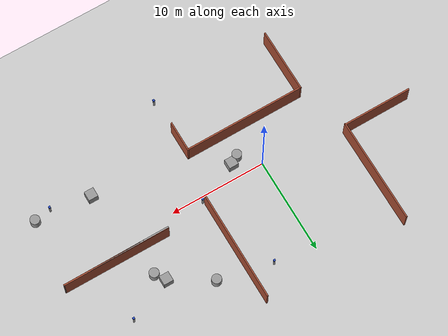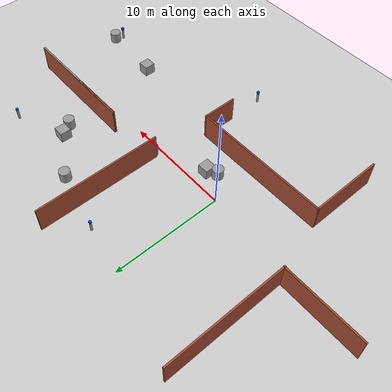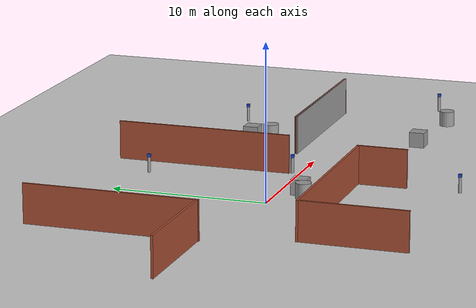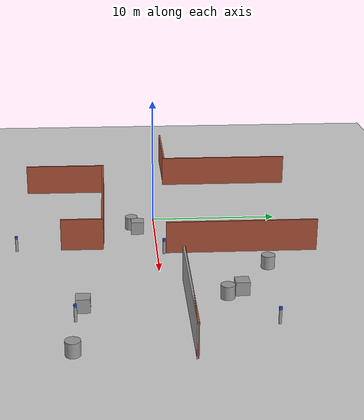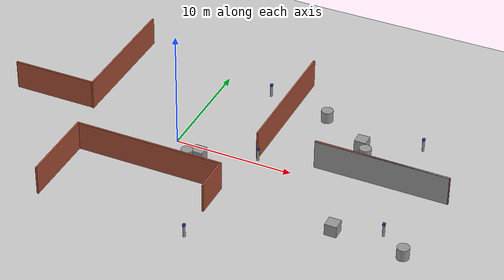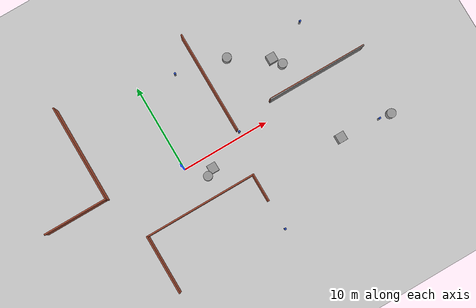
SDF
<sdf version="1.7">
 <world name="simulate_indoor">
  <model name="ground_plane">
   <static>1</static>
   <link name="link">
    <collision name="collision">
     <geometry><plane><normal>0 0 1</normal><size>100 100</size></plane></geometry>
     <surface>
      <contact><collide_bitmask>65535</collide_bitmask></contact>
      <friction><ode><mu>100</mu><mu2>50</mu2></ode></friction>
     </surface>
    </collision>
    <visual name="visual">
     <cast_shadows>0</cast_shadows>
     <geometry><plane><normal>0 0 1</normal><size>100 100</size></plane></geometry>
     <material>
      <script><uri>file://media/materials/scripts/gazebo.material</uri><name>Gazebo/Grey</name></script>
     </material>
    </visual>
   </link>
  </model>
  <model name="UWB_1">
   <link name="link_1">
    <inertial>
     <mass>1</mass>
     <inertia><ixx>0.145833</ixx><ixy>0</ixy><ixz>0</ixz><iyy>0.145833</iyy><iyz>0</iyz><izz>0.125</izz></inertia>
    </inertial>
    <pose>0 0 0.5 0 -0 0</pose>
    <visual name="visual">
     <geometry><cylinder><radius>0.1</radius><length>1</length></cylinder></geometry>
     <material>
      <lighting>1</lighting>
      <script><uri>file://media/materials/scripts/gazebo.material</uri><name>Gazebo/Grey</name></script>
     </material>
    </visual>
    <collision name="collision">
     <geometry><cylinder><radius>0.1</radius><length>1</length></cylinder></geometry>
     <surface>
      <friction>
       <ode><mu>1</mu><mu2>1</mu2><fdir1>0 0 0</fdir1><slip1>0</slip1><slip2>0</slip2></ode>
       <torsional>
        <coefficient>1</coefficient>
        <patch_radius>0</patch_radius>
        <surface_radius>0</surface_radius>
        <use_patch_radius>1</use_patch_radius>
        <ode><slip>0</slip></ode>
       </torsional>
      </friction>
      <bounce><restitution_coefficient>0</restitution_coefficient><threshold>1e+06</threshold></bounce>
      <contact>
       <collide_without_contact>0</collide_without_contact>
       <collide_without_contact_bitmask>1</collide_without_contact_bitmask>
       <collide_bitmask>1</collide_bitmask>
       <ode>
        <soft_cfm>0</soft_cfm>
        <soft_erp>0.2</soft_erp>
        <kp>1e+13</kp>
        <kd>1</kd>
        <max_vel>0.01</max_vel>
        <min_depth>0</min_depth>
       </ode>
       <bullet>
        <split_impulse>1</split_impulse>
        <split_impulse_penetration_threshold>-0.01</split_impulse_penetration_threshold>
        <soft_cfm>0</soft_cfm>
        <soft_erp>0.2</soft_erp>
        <kp>1e+13</kp>
        <kd>1</kd>
       </bullet>
      </contact>
     </surface>
    </collision>
   </link>
   <link name="link_2">
    <inertial>
     <mass>1</mass>
     <inertia>
      <ixx>0.166667</ixx>
      <ixy>0</ixy>
      <ixz>0</ixz>
      <iyy>0.166667</iyy>
      <iyz>0</iyz>
      <izz>0.166667</izz>
     </inertia>
    </inertial>
    <pose>0 0 1.1 0 -0 0</pose>
    <visual name="visual">
     <geometry><box><size>0.2 0.2 0.2</size></box></geometry>
     <material>
      <lighting>1</lighting>
      <script><uri>file://media/materials/scripts/gazebo.material</uri><name>Gazebo/Blue</name></script>
      <shader type="vertex"><normal_map>__default__</normal_map></shader>
     </material>
    </visual>
    <collision name="collision">
     <geometry><box><size>0.2 0.2 0.2</size></box></geometry>
     <surface>
      <friction>
       <ode><mu>1</mu><mu2>1</mu2><fdir1>0 0 0</fdir1><slip1>0</slip1><slip2>0</slip2></ode>
       <torsional>
        <coefficient>1</coefficient>
        <patch_radius>0</patch_radius>
        <surface_radius>0</surface_radius>
        <use_patch_radius>1</use_patch_radius>
        <ode><slip>0</slip></ode>
       </torsional>
      </friction>
      <bounce><restitution_coefficient>0</restitution_coefficient><threshold>1e+06</threshold></bounce>
      <contact>
       <collide_without_contact>0</collide_without_contact>
       <collide_without_contact_bitmask>1</collide_without_contact_bitmask>
       <collide_bitmask>1</collide_bitmask>
       <ode>
        <soft_cfm>0</soft_cfm>
        <soft_erp>0.2</soft_erp>
        <kp>1e+13</kp>
        <kd>1</kd>
        <max_vel>0.01</max_vel>
        <min_depth>0</min_depth>
       </ode>
       <bullet>
        <split_impulse>1</split_impulse>
        <split_impulse_penetration_threshold>-0.01</split_impulse_penetration_threshold>
        <soft_cfm>0</soft_cfm>
        <soft_erp>0.2</soft_erp>
        <kp>1e+13</kp>
        <kd>1</kd>
       </bullet>
      </contact>
     </surface>
    </collision>
   </link>
   <static>1</static>
   <pose>20.0355 -5.74231 1.38234 0 -0 0</pose>
  </model>
  <model name="UWB_2">
   <link name="link_1">
    <inertial>
     <mass>1</mass>
     <inertia><ixx>0.145833</ixx><ixy>0</ixy><ixz>0</ixz><iyy>0.145833</iyy><iyz>0</iyz><izz>0.125</izz></inertia>
    </inertial>
    <pose>0 0 0.5 0 -0 0</pose>
    <visual name="visual">
     <geometry><cylinder><radius>0.1</radius><length>1</length></cylinder></geometry>
     <material>
      <lighting>1</lighting>
      <script><uri>file://media/materials/scripts/gazebo.material</uri><name>Gazebo/Grey</name></script>
     </material>
    </visual>
    <collision name="collision">
     <geometry><cylinder><radius>0.1</radius><length>1</length></cylinder></geometry>
     <surface>
      <friction>
       <ode><mu>1</mu><mu2>1</mu2><fdir1>0 0 0</fdir1><slip1>0</slip1><slip2>0</slip2></ode>
       <torsional>
        <coefficient>1</coefficient>
        <patch_radius>0</patch_radius>
        <surface_radius>0</surface_radius>
        <use_patch_radius>1</use_patch_radius>
        <ode><slip>0</slip></ode>
       </torsional>
      </friction>
      <bounce><restitution_coefficient>0</restitution_coefficient><threshold>1e+06</threshold></bounce>
      <contact>
       <collide_without_contact>0</collide_without_contact>
       <collide_without_contact_bitmask>1</collide_without_contact_bitmask>
       <collide_bitmask>1</collide_bitmask>
       <ode>
        <soft_cfm>0</soft_cfm>
        <soft_erp>0.2</soft_erp>
        <kp>1e+13</kp>
        <kd>1</kd>
        <max_vel>0.01</max_vel>
        <min_depth>0</min_depth>
       </ode>
       <bullet>
        <split_impulse>1</split_impulse>
        <split_impulse_penetration_threshold>-0.01</split_impulse_penetration_threshold>
        <soft_cfm>0</soft_cfm>
        <soft_erp>0.2</soft_erp>
        <kp>1e+13</kp>
        <kd>1</kd>
       </bullet>
      </contact>
     </surface>
    </collision>
   </link>
   <link name="link_2">
    <inertial>
     <mass>1</mass>
     <inertia>
      <ixx>0.166667</ixx>
      <ixy>0</ixy>
      <ixz>0</ixz>
      <iyy>0.166667</iyy>
      <iyz>0</iyz>
      <izz>0.166667</izz>
     </inertia>
    </inertial>
    <pose>0 0 1.1 0 -0 0</pose>
    <visual name="visual">
     <geometry><box><size>0.2 0.2 0.2</size></box></geometry>
     <material>
      <lighting>1</lighting>
      <script><uri>file://media/materials/scripts/gazebo.material</uri><name>Gazebo/Blue</name></script>
      <shader type="vertex"><normal_map>__default__</normal_map></shader>
     </material>
    </visual>
    <collision name="collision">
     <geometry><box><size>0.2 0.2 0.2</size></box></geometry>
     <surface>
      <friction>
       <ode><mu>1</mu><mu2>1</mu2><fdir1>0 0 0</fdir1><slip1>0</slip1><slip2>0</slip2></ode>
       <torsional>
        <coefficient>1</coefficient>
        <patch_radius>0</patch_radius>
        <surface_radius>0</surface_radius>
        <use_patch_radius>1</use_patch_radius>
        <ode><slip>0</slip></ode>
       </torsional>
      </friction>
      <bounce><restitution_coefficient>0</restitution_coefficient><threshold>1e+06</threshold></bounce>
      <contact>
       <collide_without_contact>0</collide_without_contact>
       <collide_without_contact_bitmask>1</collide_without_contact_bitmask>
       <collide_bitmask>1</collide_bitmask>
       <ode>
        <soft_cfm>0</soft_cfm>
        <soft_erp>0.2</soft_erp>
        <kp>1e+13</kp>
        <kd>1</kd>
        <max_vel>0.01</max_vel>
        <min_depth>0</min_depth>
       </ode>
       <bullet>
        <split_impulse>1</split_impulse>
        <split_impulse_penetration_threshold>-0.01</split_impulse_penetration_threshold>
        <soft_cfm>0</soft_cfm>
        <soft_erp>0.2</soft_erp>
        <kp>1e+13</kp>
        <kd>1</kd>
       </bullet>
      </contact>
     </surface>
    </collision>
   </link>
   <static>1</static>
   <pose>4.22868 9.2032 0 0 -0 0</pose>
  </model>
  <model name="UWB_4">
   <link name="link_1">
    <inertial>
     <mass>1</mass>
     <inertia><ixx>0.145833</ixx><ixy>0</ixy><ixz>0</ixz><iyy>0.145833</iyy><iyz>0</iyz><izz>0.125</izz></inertia>
    </inertial>
    <pose>0 0 0.5 0 -0 0</pose>
    <visual name="visual">
     <geometry><cylinder><radius>0.1</radius><length>1</length></cylinder></geometry>
     <material>
      <lighting>1</lighting>
      <script><uri>file://media/materials/scripts/gazebo.material</uri><name>Gazebo/Grey</name></script>
     </material>
    </visual>
    <collision name="collision">
     <geometry><cylinder><radius>0.1</radius><length>1</length></cylinder></geometry>
     <surface>
      <friction>
       <ode><mu>1</mu><mu2>1</mu2><fdir1>0 0 0</fdir1><slip1>0</slip1><slip2>0</slip2></ode>
       <torsional>
        <coefficient>1</coefficient>
        <patch_radius>0</patch_radius>
        <surface_radius>0</surface_radius>
        <use_patch_radius>1</use_patch_radius>
        <ode><slip>0</slip></ode>
       </torsional>
      </friction>
      <bounce><restitution_coefficient>0</restitution_coefficient><threshold>1e+06</threshold></bounce>
      <contact>
       <collide_without_contact>0</collide_without_contact>
       <collide_without_contact_bitmask>1</collide_without_contact_bitmask>
       <collide_bitmask>1</collide_bitmask>
       <ode>
        <soft_cfm>0</soft_cfm>
        <soft_erp>0.2</soft_erp>
        <kp>1e+13</kp>
        <kd>1</kd>
        <max_vel>0.01</max_vel>
        <min_depth>0</min_depth>
       </ode>
       <bullet>
        <split_impulse>1</split_impulse>
        <split_impulse_penetration_threshold>-0.01</split_impulse_penetration_threshold>
        <soft_cfm>0</soft_cfm>
        <soft_erp>0.2</soft_erp>
        <kp>1e+13</kp>
        <kd>1</kd>
       </bullet>
      </contact>
     </surface>
    </collision>
   </link>
   <link name="link_2">
    <inertial>
     <mass>1</mass>
     <inertia>
      <ixx>0.166667</ixx>
      <ixy>0</ixy>
      <ixz>0</ixz>
      <iyy>0.166667</iyy>
      <iyz>0</iyz>
      <izz>0.166667</izz>
     </inertia>
    </inertial>
    <pose>0 0 1.1 0 -0 0</pose>
    <visual name="visual">
     <geometry><box><size>0.2 0.2 0.2</size></box></geometry>
     <material>
      <lighting>1</lighting>
      <script><uri>file://media/materials/scripts/gazebo.material</uri><name>Gazebo/Blue</name></script>
      <shader type="vertex"><normal_map>__default__</normal_map></shader>
     </material>
    </visual>
    <collision name="collision">
     <geometry><box><size>0.2 0.2 0.2</size></box></geometry>
     <surface>
      <friction>
       <ode><mu>1</mu><mu2>1</mu2><fdir1>0 0 0</fdir1><slip1>0</slip1><slip2>0</slip2></ode>
       <torsional>
        <coefficient>1</coefficient>
        <patch_radius>0</patch_radius>
        <surface_radius>0</surface_radius>
        <use_patch_radius>1</use_patch_radius>
        <ode><slip>0</slip></ode>
       </torsional>
      </friction>
      <bounce><restitution_coefficient>0</restitution_coefficient><threshold>1e+06</threshold></bounce>
      <contact>
       <collide_without_contact>0</collide_without_contact>
       <collide_without_contact_bitmask>1</collide_without_contact_bitmask>
       <collide_bitmask>1</collide_bitmask>
       <ode>
        <soft_cfm>0</soft_cfm>
        <soft_erp>0.2</soft_erp>
        <kp>1e+13</kp>
        <kd>1</kd>
        <max_vel>0.01</max_vel>
        <min_depth>0</min_depth>
       </ode>
       <bullet>
        <split_impulse>1</split_impulse>
        <split_impulse_penetration_threshold>-0.01</split_impulse_penetration_threshold>
        <soft_cfm>0</soft_cfm>
        <soft_erp>0.2</soft_erp>
        <kp>1e+13</kp>
        <kd>1</kd>
       </bullet>
      </contact>
     </surface>
    </collision>
   </link>
   <static>1</static>
   <pose>18.429 7.35495 0 0 -0 0</pose>
  </model>
  <model name="unit_cylinder_5">
   <pose>14.569 4.42847 0.499994 3e-06 -3e-06 0</pose>
   <link name="link">
    <inertial>
     <mass>1</mass>
     <inertia><ixx>0.145833</ixx><ixy>0</ixy><ixz>0</ixz><iyy>0.145833</iyy><iyz>0</iyz><izz>0.125</izz></inertia>
    </inertial>
    <collision name="collision">
     <geometry><cylinder><radius>0.5</radius><length>1</length></cylinder></geometry>
    </collision>
    <visual name="visual">
     <geometry><cylinder><radius>0.5</radius><length>1</length></cylinder></geometry>
     <material>
      <script><name>Gazebo/Grey</name><uri>file://media/materials/scripts/gazebo.material</uri></script>
     </material>
    </visual>
   </link>
  </model>
  <model name="unit_cylinder_6">
   <pose>21.7024 -5.89255 0.499994 3e-06 -3e-06 0</pose>
   <link name="link">
    <inertial>
     <mass>1</mass>
     <inertia><ixx>0.145833</ixx><ixy>0</ixy><ixz>0</ixz><iyy>0.145833</iyy><iyz>0</iyz><izz>0.125</izz></inertia>
    </inertial>
    <collision name="collision">
     <geometry><cylinder><radius>0.5</radius><length>1</length></cylinder></geometry>
    </collision>
    <visual name="visual">
     <geometry><cylinder><radius>0.5</radius><length>1</length></cylinder></geometry>
     <material>
      <script><name>Gazebo/Grey</name><uri>file://media/materials/scripts/gazebo.material</uri></script>
     </material>
    </visual>
   </link>
  </model>
  <model name="unit_box_4">
   <pose>15.8547 -5.40505 0.499995 0 1e-05 0</pose>
   <link name="link">
    <inertial>
     <mass>1</mass>
     <inertia>
      <ixx>0.166667</ixx>
      <ixy>0</ixy>
      <ixz>0</ixz>
      <iyy>0.166667</iyy>
      <iyz>0</iyz>
      <izz>0.166667</izz>
     </inertia>
    </inertial>
    <collision name="collision"><geometry><box><size>1 1 1</size></box></geometry></collision>
    <visual name="visual">
     <geometry><box><size>1 1 1</size></box></geometry>
     <material>
      <script><name>Gazebo/Grey</name><uri>file://media/materials/scripts/gazebo.material</uri></script>
     </material>
    </visual>
   </link>
  </model>
  <model name="unit_box_5">
   <pose>13.8689 5.49369 0.499995 1e-05 -0 0</pose>
   <link name="link">
    <inertial>
     <mass>1</mass>
     <inertia>
      <ixx>0.166667</ixx>
      <ixy>0</ixy>
      <ixz>0</ixz>
      <iyy>0.166667</iyy>
      <iyz>0</iyz>
      <izz>0.166667</izz>
     </inertia>
    </inertial>
    <collision name="collision"><geometry><box><size>1 1 1</size></box></geometry></collision>
    <visual name="visual">
     <geometry><box><size>1 1 1</size></box></geometry>
     <material>
      <script><name>Gazebo/Grey</name><uri>file://media/materials/scripts/gazebo.material</uri></script>
     </material>
    </visual>
   </link>
  </model>
  <model name="unit_cylinder_9">
   <pose>9.81531 7.95336 0.499996 4e-06 2e-06 -0</pose>
   <link name="link">
    <inertial>
     <mass>1</mass>
     <inertia><ixx>0.145833</ixx><ixy>0</ixy><ixz>0</ixz><iyy>0.145833</iyy><iyz>0</iyz><izz>0.125</izz></inertia>
    </inertial>
    <collision name="collision">
     <geometry><cylinder><radius>0.5</radius><length>1</length></cylinder></geometry>
    </collision>
    <visual name="visual">
     <geometry><cylinder><radius>0.5</radius><length>1</length></cylinder></geometry>
     <material>
      <script><name>Gazebo/Grey</name><uri>file://media/materials/scripts/gazebo.material</uri></script>
     </material>
    </visual>
   </link>
  </model>
  <model name="unit_box_8">
   <pose>2.63625 -1.3781 0.499995 1e-05 -0 0</pose>
   <link name="link">
    <inertial>
     <mass>1</mass>
     <inertia>
      <ixx>0.166667</ixx>
      <ixy>0</ixy>
      <ixz>0</ixz>
      <iyy>0.166667</iyy>
      <iyz>0</iyz>
      <izz>0.166667</izz>
     </inertia>
    </inertial>
    <collision name="collision"><geometry><box><size>1 1 1</size></box></geometry></collision>
    <visual name="visual">
     <geometry><box><size>1 1 1</size></box></geometry>
     <material>
      <script><name>Gazebo/Grey</name><uri>file://media/materials/scripts/gazebo.material</uri></script>
     </material>
    </visual>
   </link>
  </model>
  <model name="build_3">
   <pose>3.45601 0.72105 0 0 -0 0</pose>
   <link name="Wall_0">
    <collision name="Wall_0_Collision">
     <geometry><box><size>11.5 0.15 2.5</size></box></geometry>
     <pose>0 0 1.25 0 -0 0</pose>
    </collision>
    <visual name="Wall_0_Visual">
     <pose>0 0 1.25 0 -0 0</pose>
     <geometry><box><size>11.5 0.15 2.5</size></box></geometry>
     <material>
      <script><uri>file://media/materials/scripts/gazebo.material</uri><name>Gazebo/Bricks</name></script>
      <ambient>1 1 1 1</ambient>
     </material>
     <meta><layer>0</layer></meta>
    </visual>
    <pose>3.34151 5.70422 0 0 -0 -1.5708</pose>
   </link>
   <link name="Wall_10">
    <collision name="Wall_10_Collision">
     <geometry><box><size>3.25 0.15 2.5</size></box></geometry>
     <pose>0 0 1.25 0 -0 0</pose>
    </collision>
    <visual name="Wall_10_Visual">
     <pose>0 0 1.25 0 -0 0</pose>
     <geometry><box><size>3.25 0.15 2.5</size></box></geometry>
     <material>
      <script><uri>file://media/materials/scripts/gazebo.material</uri><name>Gazebo/Bricks</name></script>
      <ambient>1 1 1 1</ambient>
     </material>
     <meta><layer>0</layer></meta>
    </visual>
    <pose>2.39877 -6.39665 0 0 -0 -1.5708</pose>
   </link>
   <link name="Wall_12">
    <collision name="Wall_12_Collision">
     <geometry><box><size>6.75 0.15 2.5</size></box></geometry>
     <pose>0 0 1.25 0 -0 0</pose>
    </collision>
    <visual name="Wall_12_Visual">
     <pose>0 0 1.25 0 -0 0</pose>
     <geometry><box><size>6.75 0.15 2.5</size></box></geometry>
     <material>
      <script><uri>file://media/materials/scripts/gazebo.material</uri><name>Gazebo/Bricks</name></script>
      <ambient>1 1 1 1</ambient>
     </material>
     <meta><layer>0</layer></meta>
    </visual>
    <pose>-10.2012 -8.14665 0 0 -0 -1.5708</pose>
   </link>
   <link name="Wall_2">
    <collision name="Wall_2_Collision">
     <geometry><box><size>11.25 0.15 2.5</size></box></geometry>
     <pose>0 0 1.25 0 -0 0</pose>
    </collision>
    <visual name="Wall_2_Visual">
     <pose>0 0 1.25 0 -0 0</pose>
     <geometry><box><size>11.25 0.15 2.5</size></box></geometry>
     <material>
      <script><uri>file://media/materials/scripts/gazebo.material</uri><name>Gazebo/Grey</name></script>
      <ambient>1 1 1 1</ambient>
     </material>
     <meta><layer>0</layer></meta>
    </visual>
    <pose>13.5132 0.921806 0 0 -0 3.14159</pose>
   </link>
   <link name="Wall_3">
    <collision name="Wall_3_Collision">
     <geometry><box><size>11.2501 0.15 2.5</size></box></geometry>
     <pose>0 0 1.25 0 -0 0</pose>
    </collision>
    <visual name="Wall_3_Visual">
     <pose>0 0 1.25 0 -0 0</pose>
     <geometry><box><size>11.2501 0.15 2.5</size></box></geometry>
     <material>
      <script><uri>file://media/materials/scripts/gazebo.material</uri><name>Gazebo/Bricks</name></script>
      <ambient>1 1 1 1</ambient>
     </material>
     <meta><layer>0</layer></meta>
    </visual>
    <pose>13.5132 0.948557 0 0 -0 -0.00482</pose>
   </link>
   <link name="Wall_5">
    <collision name="Wall_5_Collision">
     <geometry><box><size>11 0.15 2.5</size></box></geometry>
     <pose>0 0 1.25 0 -0 0</pose>
    </collision>
    <visual name="Wall_5_Visual">
     <pose>0 0 1.25 0 -0 0</pose>
     <geometry><box><size>11 0.15 2.5</size></box></geometry>
     <material>
      <script><uri>file://media/materials/scripts/gazebo.material</uri><name>Gazebo/Bricks</name></script>
      <ambient>1 1 1 1</ambient>
     </material>
     <meta><layer>0</layer></meta>
    </visual>
    <pose>-11.9226 6.02165 0 0 -0 1.5708</pose>
   </link>
   <link name="Wall_7">
    <collision name="Wall_7_Collision">
     <geometry><box><size>7.25 0.15 2.5</size></box></geometry>
     <pose>0 0 1.25 0 -0 0</pose>
    </collision>
    <visual name="Wall_7_Visual">
     <pose>0 0 1.25 0 -0 0</pose>
     <geometry><box><size>7.25 0.15 2.5</size></box></geometry>
     <material>
      <script><uri>file://media/materials/scripts/gazebo.material</uri><name>Gazebo/Bricks</name></script>
      <ambient>1 1 1 1</ambient>
     </material>
     <meta><layer>0</layer></meta>
    </visual>
    <pose>-15.5135 0.643173 0 0 -0 3.14159</pose>
   </link>
   <link name="Wall_9">
    <collision name="Wall_9_Collision">
     <geometry><box><size>12.75 0.15 2.5</size></box></geometry>
     <pose>0 0 1.25 0 -0 0</pose>
    </collision>
    <visual name="Wall_9_Visual">
     <pose>0 0 1.25 0 -0 0</pose>
     <geometry><box><size>12.75 0.15 2.5</size></box></geometry>
     <material>
      <script><uri>file://media/materials/scripts/gazebo.material</uri><name>Gazebo/Bricks</name></script>
      <ambient>1 1 1 1</ambient>
     </material>
     <meta><layer>0</layer></meta>
    </visual>
    <pose>-3.90123 -4.84665 0 0 -0 0</pose>
   </link>
   <static>1</static>
  </model>
  <model name="UWB_2_clone_1">
   <link name="link_1">
    <inertial>
     <mass>1</mass>
     <inertia><ixx>0.145833</ixx><ixy>0</ixy><ixz>0</ixz><iyy>0.145833</iyy><iyz>0</iyz><izz>0.125</izz></inertia>
    </inertial>
    <pose>0 0 0.5 0 -0 0</pose>
    <visual name="visual">
     <geometry><cylinder><radius>0.1</radius><length>1</length></cylinder></geometry>
     <material>
      <lighting>1</lighting>
      <script><uri>file://media/materials/scripts/gazebo.material</uri><name>Gazebo/Grey</name></script>
     </material>
    </visual>
    <collision name="collision">
     <geometry><cylinder><radius>0.1</radius><length>1</length></cylinder></geometry>
     <surface>
      <friction>
       <ode><mu>1</mu><mu2>1</mu2><fdir1>0 0 0</fdir1><slip1>0</slip1><slip2>0</slip2></ode>
       <torsional>
        <coefficient>1</coefficient>
        <patch_radius>0</patch_radius>
        <surface_radius>0</surface_radius>
        <use_patch_radius>1</use_patch_radius>
        <ode><slip>0</slip></ode>
       </torsional>
      </friction>
      <bounce><restitution_coefficient>0</restitution_coefficient><threshold>1e+06</threshold></bounce>
      <contact>
       <collide_without_contact>0</collide_without_contact>
       <collide_without_contact_bitmask>1</collide_without_contact_bitmask>
       <collide_bitmask>1</collide_bitmask>
       <ode>
        <soft_cfm>0</soft_cfm>
        <soft_erp>0.2</soft_erp>
        <kp>1e+13</kp>
        <kd>1</kd>
        <max_vel>0.01</max_vel>
        <min_depth>0</min_depth>
       </ode>
       <bullet>
        <split_impulse>1</split_impulse>
        <split_impulse_penetration_threshold>-0.01</split_impulse_penetration_threshold>
        <soft_cfm>0</soft_cfm>
        <soft_erp>0.2</soft_erp>
        <kp>1e+13</kp>
        <kd>1</kd>
       </bullet>
      </contact>
     </surface>
    </collision>
   </link>
   <link name="link_2">
    <inertial>
     <mass>1</mass>
     <inertia>
      <ixx>0.166667</ixx>
      <ixy>0</ixy>
      <ixz>0</ixz>
      <iyy>0.166667</iyy>
      <iyz>0</iyz>
      <izz>0.166667</izz>
     </inertia>
    </inertial>
    <pose>0 0 1.1 0 -0 0</pose>
    <visual name="visual">
     <geometry><box><size>0.2 0.2 0.2</size></box></geometry>
     <material>
      <lighting>1</lighting>
      <script><uri>file://media/materials/scripts/gazebo.material</uri><name>Gazebo/Blue</name></script>
      <shader type="vertex"><normal_map>__default__</normal_map></shader>
     </material>
    </visual>
    <collision name="collision">
     <geometry><box><size>0.2 0.2 0.2</size></box></geometry>
     <surface>
      <friction>
       <ode><mu>1</mu><mu2>1</mu2><fdir1>0 0 0</fdir1><slip1>0</slip1><slip2>0</slip2></ode>
       <torsional>
        <coefficient>1</coefficient>
        <patch_radius>0</patch_radius>
        <surface_radius>0</surface_radius>
        <use_patch_radius>1</use_patch_radius>
        <ode><slip>0</slip></ode>
       </torsional>
      </friction>
      <bounce><restitution_coefficient>0</restitution_coefficient><threshold>1e+06</threshold></bounce>
      <contact>
       <collide_without_contact>0</collide_without_contact>
       <collide_without_contact_bitmask>1</collide_without_contact_bitmask>
       <collide_bitmask>1</collide_bitmask>
       <ode>
        <soft_cfm>0</soft_cfm>
        <soft_erp>0.2</soft_erp>
        <kp>1e+13</kp>
        <kd>1</kd>
        <max_vel>0.01</max_vel>
        <min_depth>0</min_depth>
       </ode>
       <bullet>
        <split_impulse>1</split_impulse>
        <split_impulse_penetration_threshold>-0.01</split_impulse_penetration_threshold>
        <soft_cfm>0</soft_cfm>
        <soft_erp>0.2</soft_erp>
        <kp>1e+13</kp>
        <kd>1</kd>
       </bullet>
      </contact>
     </surface>
    </collision>
   </link>
   <static>1</static>
   <pose>6.94999 0.515052 0 0 -0 0</pose>
  </model>
  <model name="UWB_2_clone_3">
   <link name="link_1">
    <inertial>
     <mass>1</mass>
     <inertia><ixx>0.145833</ixx><ixy>0</ixy><ixz>0</ixz><iyy>0.145833</iyy><iyz>0</iyz><izz>0.125</izz></inertia>
    </inertial>
    <pose>0 0 0.5 0 -0 0</pose>
    <visual name="visual">
     <geometry><cylinder><radius>0.1</radius><length>1</length></cylinder></geometry>
     <material>
      <lighting>1</lighting>
      <script><uri>file://media/materials/scripts/gazebo.material</uri><name>Gazebo/Grey</name></script>
     </material>
    </visual>
    <collision name="collision">
     <geometry><cylinder><radius>0.1</radius><length>1</length></cylinder></geometry>
     <surface>
      <friction>
       <ode><mu>1</mu><mu2>1</mu2><fdir1>0 0 0</fdir1><slip1>0</slip1><slip2>0</slip2></ode>
       <torsional>
        <coefficient>1</coefficient>
        <patch_radius>0</patch_radius>
        <surface_radius>0</surface_radius>
        <use_patch_radius>1</use_patch_radius>
        <ode><slip>0</slip></ode>
       </torsional>
      </friction>
      <bounce><restitution_coefficient>0</restitution_coefficient><threshold>1e+06</threshold></bounce>
      <contact>
       <collide_without_contact>0</collide_without_contact>
       <collide_without_contact_bitmask>1</collide_without_contact_bitmask>
       <collide_bitmask>1</collide_bitmask>
       <ode>
        <soft_cfm>0</soft_cfm>
        <soft_erp>0.2</soft_erp>
        <kp>1e+13</kp>
        <kd>1</kd>
        <max_vel>0.01</max_vel>
        <min_depth>0</min_depth>
       </ode>
       <bullet>
        <split_impulse>1</split_impulse>
        <split_impulse_penetration_threshold>-0.01</split_impulse_penetration_threshold>
        <soft_cfm>0</soft_cfm>
        <soft_erp>0.2</soft_erp>
        <kp>1e+13</kp>
        <kd>1</kd>
       </bullet>
      </contact>
     </surface>
    </collision>
   </link>
   <link name="link_2">
    <inertial>
     <mass>1</mass>
     <inertia>
      <ixx>0.166667</ixx>
      <ixy>0</ixy>
      <ixz>0</ixz>
      <iyy>0.166667</iyy>
      <iyz>0</iyz>
      <izz>0.166667</izz>
     </inertia>
    </inertial>
    <pose>0 0 1.1 0 -0 0</pose>
    <visual name="visual">
     <geometry><box><size>0.2 0.2 0.2</size></box></geometry>
     <material>
      <lighting>1</lighting>
      <script><uri>file://media/materials/scripts/gazebo.material</uri><name>Gazebo/Blue</name></script>
      <shader type="vertex"><normal_map>__default__</normal_map></shader>
     </material>
    </visual>
    <collision name="collision">
     <geometry><box><size>0.2 0.2 0.2</size></box></geometry>
     <surface>
      <friction>
       <ode><mu>1</mu><mu2>1</mu2><fdir1>0 0 0</fdir1><slip1>0</slip1><slip2>0</slip2></ode>
       <torsional>
        <coefficient>1</coefficient>
        <patch_radius>0</patch_radius>
        <surface_radius>0</surface_radius>
        <use_patch_radius>1</use_patch_radius>
        <ode><slip>0</slip></ode>
       </torsional>
      </friction>
      <bounce><restitution_coefficient>0</restitution_coefficient><threshold>1e+06</threshold></bounce>
      <contact>
       <collide_without_contact>0</collide_without_contact>
       <collide_without_contact_bitmask>1</collide_without_contact_bitmask>
       <collide_bitmask>1</collide_bitmask>
       <ode>
        <soft_cfm>0</soft_cfm>
        <soft_erp>0.2</soft_erp>
        <kp>1e+13</kp>
        <kd>1</kd>
        <max_vel>0.01</max_vel>
        <min_depth>0</min_depth>
       </ode>
       <bullet>
        <split_impulse>1</split_impulse>
        <split_impulse_penetration_threshold>-0.01</split_impulse_penetration_threshold>
        <soft_cfm>0</soft_cfm>
        <soft_erp>0.2</soft_erp>
        <kp>1e+13</kp>
        <kd>1</kd>
       </bullet>
      </contact>
     </surface>
    </collision>
   </link>
   <static>1</static>
   <pose>5.92269 -10.6515 0 0 -0 0</pose>
  </model>
  <model name="unit_cylinder_0">
   <pose>1.78099 -1.84019 0.5 0 -0 0</pose>
   <link name="link">
    <inertial>
     <mass>1</mass>
     <inertia><ixx>0.145833</ixx><ixy>0</ixy><ixz>0</ixz><iyy>0.145833</iyy><iyz>0</iyz><izz>0.125</izz></inertia>
    </inertial>
    <collision name="collision">
     <geometry><cylinder><radius>0.5</radius><length>1</length></cylinder></geometry>
    </collision>
    <visual name="visual">
     <geometry><cylinder><radius>0.5</radius><length>1</length></cylinder></geometry>
     <material>
      <script><name>Gazebo/Grey</name><uri>file://media/materials/scripts/gazebo.material</uri></script>
     </material>
    </visual>
   </link>
  </model>
 </world>
</sdf>
